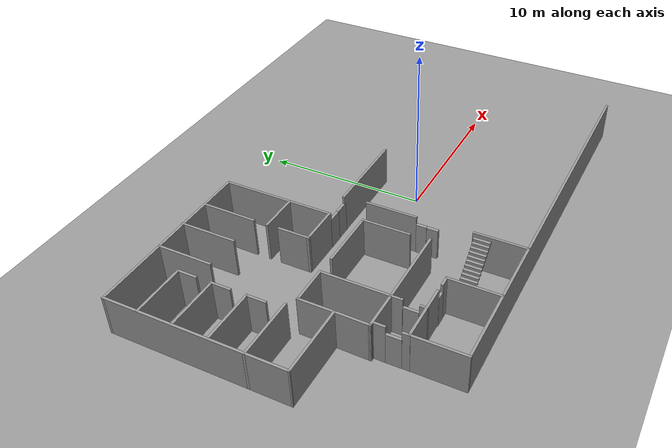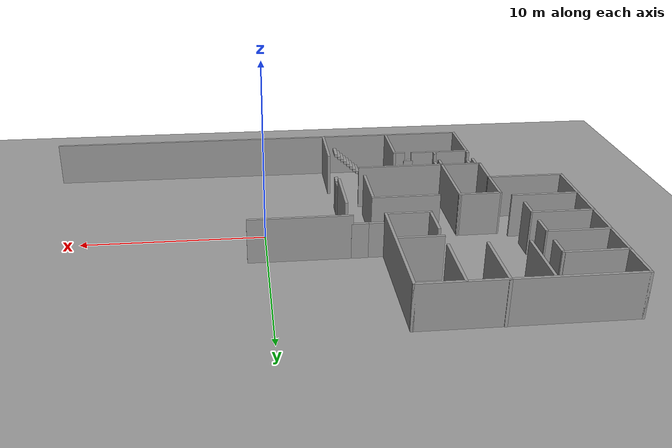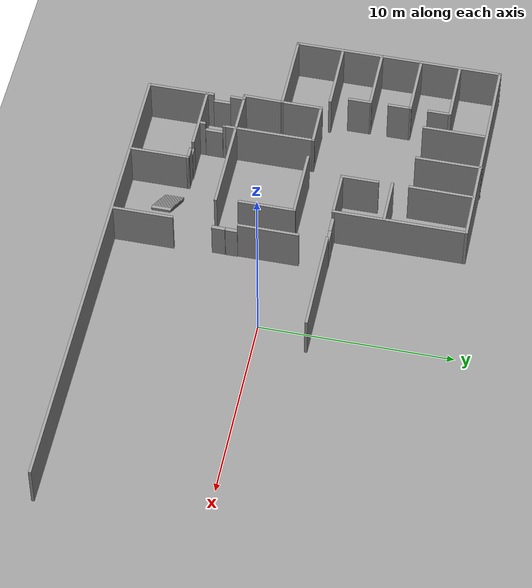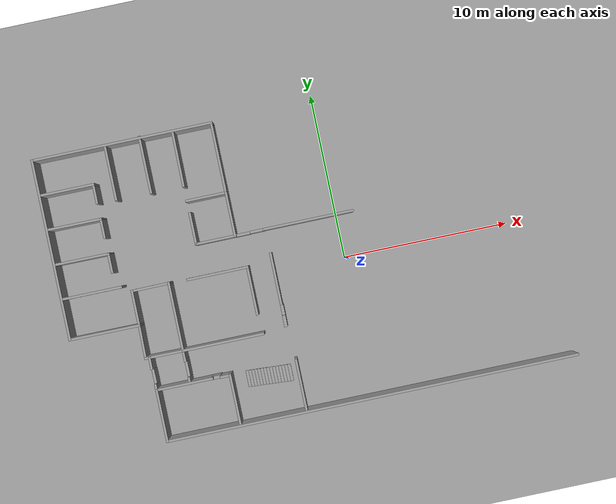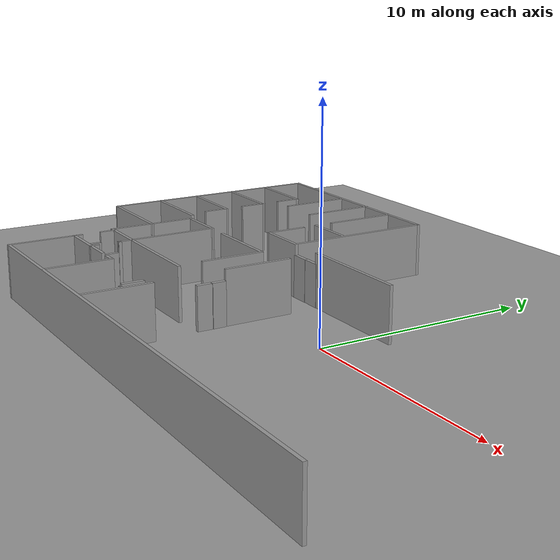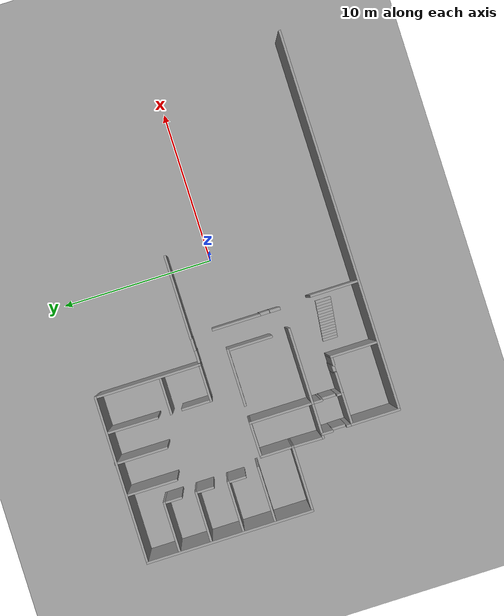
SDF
<sdf version="1.6">
 <world name="default">
  <model name="ground_plane_0">
   <static>1</static>
   <link name="link">
    <collision name="collision">
     <geometry><plane><normal>0 0 1</normal><size>100 100</size></plane></geometry>
     <surface><friction><ode><mu>100</mu><mu2>50</mu2></ode></friction></surface>
    </collision>
    <visual name="visual">
     <cast_shadows>0</cast_shadows>
     <geometry><plane><normal>0 0 1</normal><size>100 100</size></plane></geometry>
     <material>
      <script><uri>file://media/materials/scripts/gazebo.material</uri><name>Gazebo/Grey</name></script>
     </material>
    </visual>
    <velocity_decay><linear>0</linear><angular>0</angular></velocity_decay>
   </link>
   <pose>0.497681 0 0 0 -0 0</pose>
  </model>
  <model name="Devon1st">
   <pose>0.529012 0.529264 0 0 -0 0</pose>
   <link name="Door_10">
    <collision name="Door_10_Collision">
     <geometry><box><size>0.9 0.17 2</size></box></geometry>
     <pose>0 0 1 0 -0 0</pose>
    </collision>
    <visual name="Door_10_Visual">
     <pose>0 0 1 0 -0 0</pose>
     <geometry><box><size>0.9 0.17 2</size></box></geometry>
     <material>
      <script><uri>file://media/materials/scripts/gazebo.material</uri><name>Gazebo/Grey</name></script>
     </material>
    </visual>
    <pose>-11.095 -5.06555 0 0 0 -1.57113</pose>
   </link>
   <link name="Door_2">
    <collision name="Door_2_Collision">
     <geometry><box><size>0.9 0.17 2</size></box></geometry>
     <pose>0 0 1 0 -0 0</pose>
    </collision>
    <visual name="Door_2_Visual">
     <pose>0 0 1 0 -0 0</pose>
     <geometry><box><size>0.9 0.17 2</size></box></geometry>
     <material>
      <script><uri>file://media/materials/scripts/gazebo.material</uri><name>Gazebo/Grey</name></script>
     </material>
    </visual>
    <pose>-6.22882 2.1021 0 0 -0 0</pose>
   </link>
   <link name="Door_3">
    <collision name="Door_3_Collision">
     <geometry><box><size>0.9 0.17 2</size></box></geometry>
     <pose>0 0 1 0 -0 0</pose>
    </collision>
    <visual name="Door_3_Visual">
     <pose>0 0 1 0 -0 0</pose>
     <geometry><box><size>0.9 0.17 2</size></box></geometry>
     <material>
      <script><uri>file://media/materials/scripts/gazebo.material</uri><name>Gazebo/Grey</name></script>
     </material>
    </visual>
    <pose>-5.34187 2.1195 0 0 -0 0</pose>
   </link>
   <link name="Door_4">
    <collision name="Door_4_Collision">
     <geometry><box><size>0.556948 0.2 2</size></box></geometry>
     <pose>0 0 1 0 -0 0</pose>
    </collision>
    <visual name="Door_4_Visual">
     <pose>0 0 1 0 -0 0</pose>
     <geometry><box><size>0.556948 0.2 2</size></box></geometry>
     <material>
      <script><uri>file://media/materials/scripts/gazebo.material</uri><name>Gazebo/Grey</name></script>
     </material>
    </visual>
    <pose>-9.50821 -5.91025 0 0 -0 0</pose>
   </link>
   <link name="Door_7">
    <collision name="Door_7_Collision">
     <geometry><box><size>0.631949 0.2 2</size></box></geometry>
     <pose>0 0 1 0 -0 0</pose>
    </collision>
    <visual name="Door_7_Visual">
     <pose>0 0 1 0 -0 0</pose>
     <geometry><box><size>0.631949 0.2 2</size></box></geometry>
     <material>
      <script><uri>file://media/materials/scripts/gazebo.material</uri><name>Gazebo/Grey</name></script>
     </material>
    </visual>
    <pose>-4.82459 -2.7964 0 0 0 -1.56264</pose>
   </link>
   <link name="Door_8">
    <collision name="Door_8_Collision">
     <geometry><box><size>0.695848 0.2 2</size></box></geometry>
     <pose>0 0 1 0 -0 0</pose>
    </collision>
    <visual name="Door_8_Visual">
     <pose>0 0 1 0 -0 0</pose>
     <geometry><box><size>0.695848 0.2 2</size></box></geometry>
     <material>
      <script><uri>file://media/materials/scripts/gazebo.material</uri><name>Gazebo/Grey</name></script>
     </material>
    </visual>
    <pose>-4.83152 -3.47647 0 0 0 -1.58327</pose>
   </link>
   <link name="Door_9">
    <collision name="Door_9_Collision">
     <geometry><box><size>0.9 0.17 2</size></box></geometry>
     <pose>0 0 1 0 -0 0</pose>
    </collision>
    <visual name="Door_9_Visual">
     <pose>0 0 1 0 -0 0</pose>
     <geometry><box><size>0.9 0.17 2</size></box></geometry>
     <material>
      <script><uri>file://media/materials/scripts/gazebo.material</uri><name>Gazebo/Grey</name></script>
     </material>
    </visual>
    <pose>-13.1241 -5.08705 0 0 0 -1.55889</pose>
   </link>
   <link name="Stairs_2">
    <visual name="Stairs_2_Visual_0">
     <pose>-7.74491 -6.50403 0.083333 0 -0 1.5708</pose>
     <geometry><box><size>1 0.187333 0.166667</size></box></geometry>
     <material>
      <script><uri>file://media/materials/scripts/gazebo.material</uri><name>Gazebo/Grey</name></script>
      <ambient>1 1 1 1</ambient>
     </material>
    </visual>
    <collision name="Stairs_2_Collision_0">
     <geometry><box><size>1 0.187333 0.166667</size></box></geometry>
     <pose>-7.74491 -6.50403 0.083333 0 -0 1.5708</pose>
    </collision>
    <visual name="Stairs_2_Visual_1">
     <pose>-7.55758 -6.50403 0.25 0 -0 1.5708</pose>
     <geometry><box><size>1 0.187333 0.166667</size></box></geometry>
     <material>
      <script><uri>file://media/materials/scripts/gazebo.material</uri><name>Gazebo/Grey</name></script>
      <ambient>1 1 1 1</ambient>
     </material>
    </visual>
    <collision name="Stairs_2_Collision_1">
     <geometry><box><size>1 0.187333 0.166667</size></box></geometry>
     <pose>-7.55758 -6.50403 0.25 0 -0 1.5708</pose>
    </collision>
    <visual name="Stairs_2_Visual_2">
     <pose>-7.37024 -6.50403 0.416667 0 -0 1.5708</pose>
     <geometry><box><size>1 0.187333 0.166667</size></box></geometry>
     <material>
      <script><uri>file://media/materials/scripts/gazebo.material</uri><name>Gazebo/Grey</name></script>
      <ambient>1 1 1 1</ambient>
     </material>
    </visual>
    <collision name="Stairs_2_Collision_2">
     <geometry><box><size>1 0.187333 0.166667</size></box></geometry>
     <pose>-7.37024 -6.50403 0.416667 0 -0 1.5708</pose>
    </collision>
    <visual name="Stairs_2_Visual_3">
     <pose>-7.18291 -6.50403 0.583333 0 -0 1.5708</pose>
     <geometry><box><size>1 0.187333 0.166667</size></box></geometry>
     <material>
      <script><uri>file://media/materials/scripts/gazebo.material</uri><name>Gazebo/Grey</name></script>
      <ambient>1 1 1 1</ambient>
     </material>
    </visual>
    <collision name="Stairs_2_Collision_3">
     <geometry><box><size>1 0.187333 0.166667</size></box></geometry>
     <pose>-7.18291 -6.50403 0.583333 0 -0 1.5708</pose>
    </collision>
    <visual name="Stairs_2_Visual_4">
     <pose>-6.99558 -6.50403 0.75 0 -0 1.5708</pose>
     <geometry><box><size>1 0.187333 0.166667</size></box></geometry>
     <material>
      <script><uri>file://media/materials/scripts/gazebo.material</uri><name>Gazebo/Grey</name></script>
      <ambient>1 1 1 1</ambient>
     </material>
    </visual>
    <collision name="Stairs_2_Collision_4">
     <geometry><box><size>1 0.187333 0.166667</size></box></geometry>
     <pose>-6.99558 -6.50403 0.75 0 -0 1.5708</pose>
    </collision>
    <visual name="Stairs_2_Visual_5">
     <pose>-6.80824 -6.50403 0.916667 0 -0 1.5708</pose>
     <geometry><box><size>1 0.187333 0.166667</size></box></geometry>
     <material>
      <script><uri>file://media/materials/scripts/gazebo.material</uri><name>Gazebo/Grey</name></script>
      <ambient>1 1 1 1</ambient>
     </material>
    </visual>
    <collision name="Stairs_2_Collision_5">
     <geometry><box><size>1 0.187333 0.166667</size></box></geometry>
     <pose>-6.80824 -6.50403 0.916667 0 -0 1.5708</pose>
    </collision>
    <visual name="Stairs_2_Visual_6">
     <pose>-6.62091 -6.50403 1.08333 0 -0 1.5708</pose>
     <geometry><box><size>1 0.187333 0.166667</size></box></geometry>
     <material>
      <script><uri>file://media/materials/scripts/gazebo.material</uri><name>Gazebo/Grey</name></script>
      <ambient>1 1 1 1</ambient>
     </material>
    </visual>
    <collision name="Stairs_2_Collision_6">
     <geometry><box><size>1 0.187333 0.166667</size></box></geometry>
     <pose>-6.62091 -6.50403 1.08333 0 -0 1.5708</pose>
    </collision>
    <visual name="Stairs_2_Visual_7">
     <pose>-6.43358 -6.50403 1.25 0 -0 1.5708</pose>
     <geometry><box><size>1 0.187333 0.166667</size></box></geometry>
     <material>
      <script><uri>file://media/materials/scripts/gazebo.material</uri><name>Gazebo/Grey</name></script>
      <ambient>1 1 1 1</ambient>
     </material>
    </visual>
    <collision name="Stairs_2_Collision_7">
     <geometry><box><size>1 0.187333 0.166667</size></box></geometry>
     <pose>-6.43358 -6.50403 1.25 0 -0 1.5708</pose>
    </collision>
    <visual name="Stairs_2_Visual_8">
     <pose>-6.24624 -6.50403 1.41667 0 -0 1.5708</pose>
     <geometry><box><size>1 0.187333 0.166667</size></box></geometry>
     <material>
      <script><uri>file://media/materials/scripts/gazebo.material</uri><name>Gazebo/Grey</name></script>
      <ambient>1 1 1 1</ambient>
     </material>
    </visual>
    <collision name="Stairs_2_Collision_8">
     <geometry><box><size>1 0.187333 0.166667</size></box></geometry>
     <pose>-6.24624 -6.50403 1.41667 0 -0 1.5708</pose>
    </collision>
    <visual name="Stairs_2_Visual_9">
     <pose>-6.05891 -6.50403 1.58333 0 -0 1.5708</pose>
     <geometry><box><size>1 0.187333 0.166667</size></box></geometry>
     <material>
      <script><uri>file://media/materials/scripts/gazebo.material</uri><name>Gazebo/Grey</name></script>
      <ambient>1 1 1 1</ambient>
     </material>
    </visual>
    <collision name="Stairs_2_Collision_9">
     <geometry><box><size>1 0.187333 0.166667</size></box></geometry>
     <pose>-6.05891 -6.50403 1.58333 0 -0 1.5708</pose>
    </collision>
    <visual name="Stairs_2_Visual_10">
     <pose>-5.87158 -6.50403 1.75 0 -0 1.5708</pose>
     <geometry><box><size>1 0.187333 0.166667</size></box></geometry>
     <material>
      <script><uri>file://media/materials/scripts/gazebo.material</uri><name>Gazebo/Grey</name></script>
      <ambient>1 1 1 1</ambient>
     </material>
    </visual>
    <collision name="Stairs_2_Collision_10">
     <geometry><box><size>1 0.187333 0.166667</size></box></geometry>
     <pose>-5.87158 -6.50403 1.75 0 -0 1.5708</pose>
    </collision>
    <visual name="Stairs_2_Visual_11">
     <pose>-5.68424 -6.50403 1.91667 0 -0 1.5708</pose>
     <geometry><box><size>1 0.187333 0.166667</size></box></geometry>
     <material>
      <script><uri>file://media/materials/scripts/gazebo.material</uri><name>Gazebo/Grey</name></script>
      <ambient>1 1 1 1</ambient>
     </material>
    </visual>
    <collision name="Stairs_2_Collision_11">
     <geometry><box><size>1 0.187333 0.166667</size></box></geometry>
     <pose>-5.68424 -6.50403 1.91667 0 -0 1.5708</pose>
    </collision>
    <visual name="Stairs_2_Visual_12">
     <pose>-5.49691 -6.50403 2.08333 0 -0 1.5708</pose>
     <geometry><box><size>1 0.187333 0.166667</size></box></geometry>
     <material>
      <script><uri>file://media/materials/scripts/gazebo.material</uri><name>Gazebo/Grey</name></script>
      <ambient>1 1 1 1</ambient>
     </material>
    </visual>
    <collision name="Stairs_2_Collision_12">
     <geometry><box><size>1 0.187333 0.166667</size></box></geometry>
     <pose>-5.49691 -6.50403 2.08333 0 -0 1.5708</pose>
    </collision>
    <visual name="Stairs_2_Visual_13">
     <pose>-5.30958 -6.50403 2.25 0 -0 1.5708</pose>
     <geometry><box><size>1 0.187333 0.166667</size></box></geometry>
     <material>
      <script><uri>file://media/materials/scripts/gazebo.material</uri><name>Gazebo/Grey</name></script>
      <ambient>1 1 1 1</ambient>
     </material>
    </visual>
    <collision name="Stairs_2_Collision_13">
     <geometry><box><size>1 0.187333 0.166667</size></box></geometry>
     <pose>-5.30958 -6.50403 2.25 0 -0 1.5708</pose>
    </collision>
    <visual name="Stairs_2_Visual_14">
     <pose>-5.12224 -6.50403 2.41667 0 -0 1.5708</pose>
     <geometry><box><size>1 0.187333 0.166667</size></box></geometry>
     <material>
      <script><uri>file://media/materials/scripts/gazebo.material</uri><name>Gazebo/Grey</name></script>
      <ambient>1 1 1 1</ambient>
     </material>
    </visual>
    <collision name="Stairs_2_Collision_14">
     <geometry><box><size>1 0.187333 0.166667</size></box></geometry>
     <pose>-5.12224 -6.50403 2.41667 0 -0 1.5708</pose>
    </collision>
   </link>
   <link name="Wall_0">
    <collision name="Wall_0_Collision">
     <geometry><box><size>11 0.15 2.5</size></box></geometry>
     <pose>0 0 1.25 0 -0 0</pose>
    </collision>
    <visual name="Wall_0_Visual">
     <pose>0 0 1.25 0 -0 0</pose>
     <geometry><box><size>11 0.15 2.5</size></box></geometry>
     <material>
      <script><uri>file://media/materials/scripts/gazebo.material</uri><name>Gazebo/Grey</name></script>
      <ambient>1 1 1 1</ambient>
     </material>
    </visual>
    <pose>-17.5209 3.52191 0 0 0 -1.5708</pose>
   </link>
   <link name="Wall_1">
    <collision name="Wall_1_Collision">
     <geometry><box><size>4.32937 0.15 2.5</size></box></geometry>
     <pose>0 0 1.25 0 -0 0</pose>
    </collision>
    <visual name="Wall_1_Visual">
     <pose>0 0 1.25 0 -0 0</pose>
     <geometry><box><size>4.32937 0.15 2.5</size></box></geometry>
     <material>
      <script><uri>file://media/materials/scripts/gazebo.material</uri><name>Gazebo/Grey</name></script>
      <ambient>1 1 1 1</ambient>
     </material>
    </visual>
    <pose>-15.4313 -1.9097 0 0 0 -0.003164</pose>
   </link>
   <link name="Wall_102">
    <collision name="Wall_102_Collision">
     <geometry><box><size>0.770084 0.15 2.5</size></box></geometry>
     <pose>0 0 1.25 0 -0 0</pose>
    </collision>
    <visual name="Wall_102_Visual">
     <pose>0 0 1.25 0 -0 0</pose>
     <geometry><box><size>0.770084 0.15 2.5</size></box></geometry>
     <material>
      <script><uri>file://media/materials/scripts/gazebo.material</uri><name>Gazebo/Grey</name></script>
      <ambient>1 1 1 1</ambient>
     </material>
    </visual>
    <pose>-13.1337 -4.25789 0 0 0 -1.58299</pose>
   </link>
   <link name="Wall_11">
    <collision name="Wall_11_Collision">
     <geometry><box><size>2.40851 0.15 2.5</size></box></geometry>
     <pose>0 0 1.25 0 -0 0</pose>
    </collision>
    <visual name="Wall_11_Visual">
     <pose>0 0 1.25 0 -0 0</pose>
     <geometry><box><size>2.40851 0.15 2.5</size></box></geometry>
     <material>
      <script><uri>file://media/materials/scripts/gazebo.material</uri><name>Gazebo/Grey</name></script>
      <ambient>1 1 1 1</ambient>
     </material>
    </visual>
    <pose>-12.2282 -3.92065 0 0 -0 3.13474</pose>
   </link>
   <link name="Wall_12">
    <collision name="Wall_12_Collision">
     <geometry><box><size>2.1468 0.15 2.5</size></box></geometry>
     <pose>0 0 1.25 0 -0 0</pose>
    </collision>
    <visual name="Wall_12_Visual">
     <pose>0 0 1.25 0 -0 0</pose>
     <geometry><box><size>2.1468 0.15 2.5</size></box></geometry>
     <material>
      <script><uri>file://media/materials/scripts/gazebo.material</uri><name>Gazebo/Grey</name></script>
      <ambient>1 1 1 1</ambient>
     </material>
    </visual>
    <pose>-13.3429 -2.91461 0 0 -0 1.55621</pose>
   </link>
   <link name="Wall_14">
    <collision name="Wall_14_Collision">
     <geometry><box><size>5 0.15 2.5</size></box></geometry>
     <pose>0 0 1.25 0 -0 0</pose>
    </collision>
    <visual name="Wall_14_Visual">
     <pose>0 0 1.25 0 -0 0</pose>
     <geometry><box><size>5 0.15 2.5</size></box></geometry>
     <material>
      <script><uri>file://media/materials/scripts/gazebo.material</uri><name>Gazebo/Grey</name></script>
      <ambient>1 1 1 1</ambient>
     </material>
    </visual>
    <pose>-8.67397 -3.92839 0 0 -0 0</pose>
   </link>
   <link name="Wall_18">
    <collision name="Wall_18_Collision">
     <geometry><box><size>3.75 0.15 2.5</size></box></geometry>
     <pose>0 0 1.25 0 -0 0</pose>
    </collision>
    <visual name="Wall_18_Visual">
     <pose>0 0 1.25 0 -0 0</pose>
     <geometry><box><size>3.75 0.15 2.5</size></box></geometry>
     <material>
      <script><uri>file://media/materials/scripts/gazebo.material</uri><name>Gazebo/Grey</name></script>
      <ambient>1 1 1 1</ambient>
     </material>
    </visual>
    <pose>-8.1419 0.135989 0 0 -0 0</pose>
   </link>
   <link name="Wall_19">
    <collision name="Wall_19_Collision">
     <geometry><box><size>3 0.15 2.5</size></box></geometry>
     <pose>0 0 1.25 0 -0 0</pose>
    </collision>
    <visual name="Wall_19_Visual">
     <pose>0 0 1.25 0 -0 0</pose>
     <geometry><box><size>3 0.15 2.5</size></box></geometry>
     <material>
      <script><uri>file://media/materials/scripts/gazebo.material</uri><name>Gazebo/Grey</name></script>
      <ambient>1 1 1 1</ambient>
     </material>
    </visual>
    <pose>-6.3419 -1.28901 0 0 0 -1.5708</pose>
   </link>
   <link name="Wall_2">
    <collision name="Wall_2_Collision">
     <geometry><box><size>2.22355 0.15 2.5</size></box></geometry>
     <pose>0 0 1.25 0 -0 0</pose>
    </collision>
    <visual name="Wall_2_Visual">
     <pose>0 0 1.25 0 -0 0</pose>
     <geometry><box><size>2.22355 0.15 2.5</size></box></geometry>
     <material>
      <script><uri>file://media/materials/scripts/gazebo.material</uri><name>Gazebo/Grey</name></script>
      <ambient>1 1 1 1</ambient>
     </material>
    </visual>
    <pose>-13.3284 -0.879542 0 0 -0 1.5708</pose>
   </link>
   <link name="Wall_21">
    <collision name="Wall_21_Collision">
     <geometry><box><size>11 0.15 2.5</size></box></geometry>
     <pose>0 0 1.25 0 -0 0</pose>
    </collision>
    <visual name="Wall_21_Visual">
     <pose>0 0 1.25 0 -0 0</pose>
     <geometry><box><size>11 0.15 2.5</size></box></geometry>
     <material>
      <script><uri>file://media/materials/scripts/gazebo.material</uri><name>Gazebo/Grey</name></script>
      <ambient>1 1 1 1</ambient>
     </material>
    </visual>
    <pose>-12.0959 8.94691 0 0 -0 0</pose>
   </link>
   <link name="Wall_22">
    <collision name="Wall_22_Collision">
     <geometry><box><size>7 0.15 2.5</size></box></geometry>
     <pose>0 0 1.25 0 -0 0</pose>
    </collision>
    <visual name="Wall_22_Visual">
     <pose>0 0 1.25 0 -0 0</pose>
     <geometry><box><size>7 0.15 2.5</size></box></geometry>
     <material>
      <script><uri>file://media/materials/scripts/gazebo.material</uri><name>Gazebo/Grey</name></script>
      <ambient>1 1 1 1</ambient>
     </material>
    </visual>
    <pose>-6.67093 5.52191 0 0 0 -1.5708</pose>
   </link>
   <link name="Wall_23">
    <collision name="Wall_23_Collision">
     <geometry><box><size>2.5 0.15 2.5</size></box></geometry>
     <pose>0 0 1.25 0 -0 0</pose>
    </collision>
    <visual name="Wall_23_Visual">
     <pose>0 0 1.25 0 -0 0</pose>
     <geometry><box><size>2.5 0.15 2.5</size></box></geometry>
     <material>
      <script><uri>file://media/materials/scripts/gazebo.material</uri><name>Gazebo/Grey</name></script>
      <ambient>1 1 1 1</ambient>
     </material>
    </visual>
    <pose>-7.84593 2.09691 0 0 -0 3.14159</pose>
   </link>
   <link name="Wall_24">
    <collision name="Wall_24_Collision">
     <geometry><box><size>2 0.15 2.5</size></box></geometry>
     <pose>0 0 1.25 0 -0 0</pose>
    </collision>
    <visual name="Wall_24_Visual">
     <pose>0 0 1.25 0 -0 0</pose>
     <geometry><box><size>2 0.15 2.5</size></box></geometry>
     <material>
      <script><uri>file://media/materials/scripts/gazebo.material</uri><name>Gazebo/Grey</name></script>
      <ambient>1 1 1 1</ambient>
     </material>
    </visual>
    <pose>-9.02093 3.02191 0 0 -0 1.5708</pose>
   </link>
   <link name="Wall_26">
    <collision name="Wall_26_Collision">
     <geometry><box><size>2.5 0.15 2.5</size></box></geometry>
     <pose>0 0 1.25 0 -0 0</pose>
    </collision>
    <visual name="Wall_26_Visual">
     <pose>0 0 1.25 0 -0 0</pose>
     <geometry><box><size>2.5 0.15 2.5</size></box></geometry>
     <material>
      <script><uri>file://media/materials/scripts/gazebo.material</uri><name>Gazebo/Grey</name></script>
      <ambient>1 1 1 1</ambient>
     </material>
    </visual>
    <pose>-7.86828 4.71377 0 0 -0 0</pose>
   </link>
   <link name="Wall_28">
    <collision name="Wall_28_Collision">
     <geometry><box><size>3.41174 0.15 2.5</size></box></geometry>
     <pose>0 0 1.25 0 -0 0</pose>
    </collision>
    <visual name="Wall_28_Visual">
     <pose>0 0 1.25 0 -0 0</pose>
     <geometry><box><size>3.41174 0.15 2.5</size></box></geometry>
     <material>
      <script><uri>file://media/materials/scripts/gazebo.material</uri><name>Gazebo/Grey</name></script>
      <ambient>1 1 1 1</ambient>
     </material>
    </visual>
    <pose>-9.03172 7.2697 0 0 -0 1.5637</pose>
   </link>
   <link name="Wall_30">
    <collision name="Wall_30_Collision">
     <geometry><box><size>3.5 0.15 2.5</size></box></geometry>
     <pose>0 0 1.25 0 -0 0</pose>
    </collision>
    <visual name="Wall_30_Visual">
     <pose>0 0 1.25 0 -0 0</pose>
     <geometry><box><size>3.5 0.15 2.5</size></box></geometry>
     <material>
      <script><uri>file://media/materials/scripts/gazebo.material</uri><name>Gazebo/Grey</name></script>
      <ambient>1 1 1 1</ambient>
     </material>
    </visual>
    <pose>-11.0094 7.31399 0 0 -0 1.5708</pose>
   </link>
   <link name="Wall_32">
    <collision name="Wall_32_Collision">
     <geometry><box><size>3.43463 0.15 2.5</size></box></geometry>
     <pose>0 0 1.25 0 -0 0</pose>
    </collision>
    <visual name="Wall_32_Visual">
     <pose>0 0 1.25 0 -0 0</pose>
     <geometry><box><size>3.43463 0.15 2.5</size></box></geometry>
     <material>
      <script><uri>file://media/materials/scripts/gazebo.material</uri><name>Gazebo/Grey</name></script>
      <ambient>1 1 1 1</ambient>
     </material>
    </visual>
    <pose>-13.1143 7.30439 0 0 -0 1.5708</pose>
   </link>
   <link name="Wall_34">
    <collision name="Wall_34_Collision">
     <geometry><box><size>3.39582 0.15 2.5</size></box></geometry>
     <pose>0 0 1.25 0 -0 0</pose>
    </collision>
    <visual name="Wall_34_Visual">
     <pose>0 0 1.25 0 -0 0</pose>
     <geometry><box><size>3.39582 0.15 2.5</size></box></geometry>
     <material>
      <script><uri>file://media/materials/scripts/gazebo.material</uri><name>Gazebo/Grey</name></script>
      <ambient>1 1 1 1</ambient>
     </material>
    </visual>
    <pose>-15.8862 6.81869 0 0 -0 2.5e-05</pose>
   </link>
   <link name="Wall_35">
    <collision name="Wall_35_Collision">
     <geometry><box><size>1.25 0.15 2.5</size></box></geometry>
     <pose>0 0 1.25 0 -0 0</pose>
    </collision>
    <visual name="Wall_35_Visual">
     <pose>0 0 1.25 0 -0 0</pose>
     <geometry><box><size>1.25 0.15 2.5</size></box></geometry>
     <material>
      <script><uri>file://media/materials/scripts/gazebo.material</uri><name>Gazebo/Grey</name></script>
      <ambient>1 1 1 1</ambient>
     </material>
    </visual>
    <pose>-14.2633 6.26873 0 0 0 -1.5708</pose>
   </link>
   <link name="Wall_37">
    <collision name="Wall_37_Collision">
     <geometry><box><size>3.38961 0.15 2.5</size></box></geometry>
     <pose>0 0 1.25 0 -0 0</pose>
    </collision>
    <visual name="Wall_37_Visual">
     <pose>0 0 1.25 0 -0 0</pose>
     <geometry><box><size>3.38961 0.15 2.5</size></box></geometry>
     <material>
      <script><uri>file://media/materials/scripts/gazebo.material</uri><name>Gazebo/Grey</name></script>
      <ambient>1 1 1 1</ambient>
     </material>
    </visual>
    <pose>-15.8724 4.7299 0 0 0 -0.004695</pose>
   </link>
   <link name="Wall_38">
    <collision name="Wall_38_Collision">
     <geometry><box><size>1.25 0.15 2.5</size></box></geometry>
     <pose>0 0 1.25 0 -0 0</pose>
    </collision>
    <visual name="Wall_38_Visual">
     <pose>0 0 1.25 0 -0 0</pose>
     <geometry><box><size>1.25 0.15 2.5</size></box></geometry>
     <material>
      <script><uri>file://media/materials/scripts/gazebo.material</uri><name>Gazebo/Grey</name></script>
      <ambient>1 1 1 1</ambient>
     </material>
    </visual>
    <pose>-14.2527 4.1723 0 0 0 -1.5708</pose>
   </link>
   <link name="Wall_4">
    <collision name="Wall_4_Collision">
     <geometry><box><size>2.3662 0.15 2.5</size></box></geometry>
     <pose>0 0 1.25 0 -0 0</pose>
    </collision>
    <visual name="Wall_4_Visual">
     <pose>0 0 1.25 0 -0 0</pose>
     <geometry><box><size>2.3662 0.15 2.5</size></box></geometry>
     <material>
      <script><uri>file://media/materials/scripts/gazebo.material</uri><name>Gazebo/Grey</name></script>
      <ambient>1 1 1 1</ambient>
     </material>
    </visual>
    <pose>-12.2071 0.164421 0 0 -0 0.006487</pose>
   </link>
   <link name="Wall_40">
    <collision name="Wall_40_Collision">
     <geometry><box><size>3.41992 0.15 2.5</size></box></geometry>
     <pose>0 0 1.25 0 -0 0</pose>
    </collision>
    <visual name="Wall_40_Visual">
     <pose>0 0 1.25 0 -0 0</pose>
     <geometry><box><size>3.41992 0.15 2.5</size></box></geometry>
     <material>
      <script><uri>file://media/materials/scripts/gazebo.material</uri><name>Gazebo/Grey</name></script>
      <ambient>1 1 1 1</ambient>
     </material>
    </visual>
    <pose>-15.8724 2.61588 0 0 0 -0.004651</pose>
   </link>
   <link name="Wall_41">
    <collision name="Wall_41_Collision">
     <geometry><box><size>1.25 0.15 2.5</size></box></geometry>
     <pose>0 0 1.25 0 -0 0</pose>
    </collision>
    <visual name="Wall_41_Visual">
     <pose>0 0 1.25 0 -0 0</pose>
     <geometry><box><size>1.25 0.15 2.5</size></box></geometry>
     <material>
      <script><uri>file://media/materials/scripts/gazebo.material</uri><name>Gazebo/Grey</name></script>
      <ambient>1 1 1 1</ambient>
     </material>
    </visual>
    <pose>-14.2375 2.05828 0 0 0 -1.5708</pose>
   </link>
   <link name="Wall_43">
    <collision name="Wall_43_Collision">
     <geometry><box><size>3.75055 0.15 2.5</size></box></geometry>
     <pose>0 0 1.25 0 -0 0</pose>
    </collision>
    <visual name="Wall_43_Visual">
     <pose>0 0 1.25 0 -0 0</pose>
     <geometry><box><size>3.75055 0.15 2.5</size></box></geometry>
     <material>
      <script><uri>file://media/materials/scripts/gazebo.material</uri><name>Gazebo/Grey</name></script>
      <ambient>1 1 1 1</ambient>
     </material>
    </visual>
    <pose>-15.7227 0.529879 0 0 -0 0</pose>
   </link>
   <link name="Wall_57">
    <collision name="Wall_57_Collision">
     <geometry><box><size>5.5 0.15 2.5</size></box></geometry>
     <pose>0 0 1.25 0 -0 0</pose>
    </collision>
    <visual name="Wall_57_Visual">
     <pose>0 0 1.25 0 -0 0</pose>
     <geometry><box><size>5.5 0.15 2.5</size></box></geometry>
     <material>
      <script><uri>file://media/materials/scripts/gazebo.material</uri><name>Gazebo/Grey</name></script>
      <ambient>1 1 1 1</ambient>
     </material>
    </visual>
    <pose>-2.23307 2.12347 0 0 -0 3.14159</pose>
   </link>
   <link name="Wall_6">
    <collision name="Wall_6_Collision">
     <geometry><box><size>4.25 0.15 2.5</size></box></geometry>
     <pose>0 0 1.25 0 -0 0</pose>
    </collision>
    <visual name="Wall_6_Visual">
     <pose>0 0 1.25 0 -0 0</pose>
     <geometry><box><size>4.25 0.15 2.5</size></box></geometry>
     <material>
      <script><uri>file://media/materials/scripts/gazebo.material</uri><name>Gazebo/Grey</name></script>
      <ambient>1 1 1 1</ambient>
     </material>
    </visual>
    <pose>-11.099 -1.87839 0 0 0 -1.5708</pose>
   </link>
   <link name="Wall_64">
    <collision name="Wall_64_Collision">
     <geometry><box><size>3.17537 0.15 2.5</size></box></geometry>
     <pose>0 0 1.25 0 -0 0</pose>
    </collision>
    <visual name="Wall_64_Visual">
     <pose>0 0 1.25 0 -0 0</pose>
     <geometry><box><size>3.17537 0.15 2.5</size></box></geometry>
     <material>
      <script><uri>file://media/materials/scripts/gazebo.material</uri><name>Gazebo/Grey</name></script>
      <ambient>1 1 1 1</ambient>
     </material>
    </visual>
    <pose>-4.83094 -0.894769 0 0 -0 1.5708</pose>
   </link>
   <link name="Wall_69">
    <collision name="Wall_69_Collision">
     <geometry><box><size>3.25 0.15 2.5</size></box></geometry>
     <pose>0 0 1.25 0 -0 0</pose>
    </collision>
    <visual name="Wall_69_Visual">
     <pose>0 0 1.25 0 -0 0</pose>
     <geometry><box><size>3.25 0.15 2.5</size></box></geometry>
     <material>
      <script><uri>file://media/materials/scripts/gazebo.material</uri><name>Gazebo/Grey</name></script>
      <ambient>1 1 1 1</ambient>
     </material>
    </visual>
    <pose>-13.1132 -7.44327 0 0 0 -1.5708</pose>
   </link>
   <link name="Wall_70">
    <collision name="Wall_70_Collision">
     <geometry><box><size>25 0.15 2.5</size></box></geometry>
     <pose>0 0 1.25 0 -0 0</pose>
    </collision>
    <visual name="Wall_70_Visual">
     <pose>0 0 1.25 0 -0 0</pose>
     <geometry><box><size>25 0.15 2.5</size></box></geometry>
     <material>
      <script><uri>file://media/materials/scripts/gazebo.material</uri><name>Gazebo/Grey</name></script>
      <ambient>1 1 1 1</ambient>
     </material>
    </visual>
    <pose>-0.688181 -8.99326 0 0 -0 0</pose>
   </link>
   <link name="Wall_75">
    <collision name="Wall_75_Collision">
     <geometry><box><size>3.25 0.15 2.5</size></box></geometry>
     <pose>0 0 1.25 0 -0 0</pose>
    </collision>
    <visual name="Wall_75_Visual">
     <pose>0 0 1.25 0 -0 0</pose>
     <geometry><box><size>3.25 0.15 2.5</size></box></geometry>
     <material>
      <script><uri>file://media/materials/scripts/gazebo.material</uri><name>Gazebo/Grey</name></script>
      <ambient>1 1 1 1</ambient>
     </material>
    </visual>
    <pose>-4.66029 -7.41948 0 0 -0 1.5708</pose>
   </link>
   <link name="Wall_77">
    <collision name="Wall_77_Collision">
     <geometry><box><size>3.5 0.15 2.5</size></box></geometry>
     <pose>0 0 1.25 0 -0 0</pose>
    </collision>
    <visual name="Wall_77_Visual">
     <pose>0 0 1.25 0 -0 0</pose>
     <geometry><box><size>3.5 0.15 2.5</size></box></geometry>
     <material>
      <script><uri>file://media/materials/scripts/gazebo.material</uri><name>Gazebo/Grey</name></script>
      <ambient>1 1 1 1</ambient>
     </material>
    </visual>
    <pose>-11.4382 -5.89327 0 0 -0 0</pose>
   </link>
   <link name="Wall_79">
    <collision name="Wall_79_Collision">
     <geometry><box><size>0.692225 0.15 2.5</size></box></geometry>
     <pose>0 0 1.25 0 -0 0</pose>
    </collision>
    <visual name="Wall_79_Visual">
     <pose>0 0 1.25 0 -0 0</pose>
     <geometry><box><size>0.692225 0.15 2.5</size></box></geometry>
     <material>
      <script><uri>file://media/materials/scripts/gazebo.material</uri><name>Gazebo/Grey</name></script>
      <ambient>1 1 1 1</ambient>
     </material>
    </visual>
    <pose>-8.93857 -5.92416 0 0 -0 0</pose>
   </link>
   <link name="Wall_80">
    <collision name="Wall_80_Collision">
     <geometry><box><size>3.17853 0.15 2.5</size></box></geometry>
     <pose>0 0 1.25 0 -0 0</pose>
    </collision>
    <visual name="Wall_80_Visual">
     <pose>0 0 1.25 0 -0 0</pose>
     <geometry><box><size>3.17853 0.15 2.5</size></box></geometry>
     <material>
      <script><uri>file://media/materials/scripts/gazebo.material</uri><name>Gazebo/Grey</name></script>
      <ambient>1 1 1 1</ambient>
     </material>
    </visual>
    <pose>-8.66746 -7.43842 0 0 0 -1.5708</pose>
   </link>
   <link name="Wall_93">
    <collision name="Wall_93_Collision">
     <geometry><box><size>0.75 0.15 2.5</size></box></geometry>
     <pose>0 0 1.25 0 -0 0</pose>
    </collision>
    <visual name="Wall_93_Visual">
     <pose>0 0 1.25 0 -0 0</pose>
     <geometry><box><size>0.75 0.15 2.5</size></box></geometry>
     <material>
      <script><uri>file://media/materials/scripts/gazebo.material</uri><name>Gazebo/Grey</name></script>
      <ambient>1 1 1 1</ambient>
     </material>
    </visual>
    <pose>-11.099 -4.22839 0 0 0 -1.5708</pose>
   </link>
   <link name="Wall_94">
    <collision name="Wall_94_Collision">
     <geometry><box><size>0.16 0.15 2.5</size></box></geometry>
     <pose>0 0 1.25 0 -0 0</pose>
    </collision>
    <visual name="Wall_94_Visual">
     <pose>0 0 1.25 0 -0 0</pose>
     <geometry><box><size>0.16 0.15 2.5</size></box></geometry>
     <material>
      <script><uri>file://media/materials/scripts/gazebo.material</uri><name>Gazebo/Grey</name></script>
      <ambient>1 1 1 1</ambient>
     </material>
    </visual>
    <pose>-11.094 -4.52839 0 0 -0 0</pose>
   </link>
   <link name="Wall_96">
    <collision name="Wall_96_Collision">
     <geometry><box><size>0.444896 0.15 2.5</size></box></geometry>
     <pose>0 0 1.25 0 -0 0</pose>
    </collision>
    <visual name="Wall_96_Visual">
     <pose>0 0 1.25 0 -0 0</pose>
     <geometry><box><size>0.444896 0.15 2.5</size></box></geometry>
     <material>
      <script><uri>file://media/materials/scripts/gazebo.material</uri><name>Gazebo/Grey</name></script>
      <ambient>1 1 1 1</ambient>
     </material>
    </visual>
    <pose>-11.0921 -5.74713 0 0 0 -1.5708</pose>
   </link>
   <link name="Wall_98">
    <collision name="Wall_98_Collision">
     <geometry><box><size>0.444896 0.15 2.5</size></box></geometry>
     <pose>0 0 1.25 0 -0 0</pose>
    </collision>
    <visual name="Wall_98_Visual">
     <pose>0 0 1.25 0 -0 0</pose>
     <geometry><box><size>0.444896 0.15 2.5</size></box></geometry>
     <material>
      <script><uri>file://media/materials/scripts/gazebo.material</uri><name>Gazebo/Grey</name></script>
      <ambient>1 1 1 1</ambient>
     </material>
    </visual>
    <pose>-13.1186 -5.73957 0 0 0 -1.5708</pose>
   </link>
   <static>1</static>
  </model>
 </world>
</sdf>
